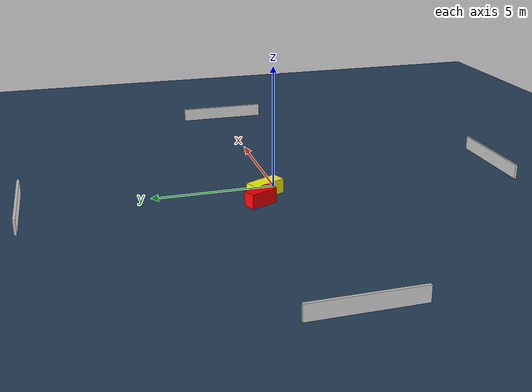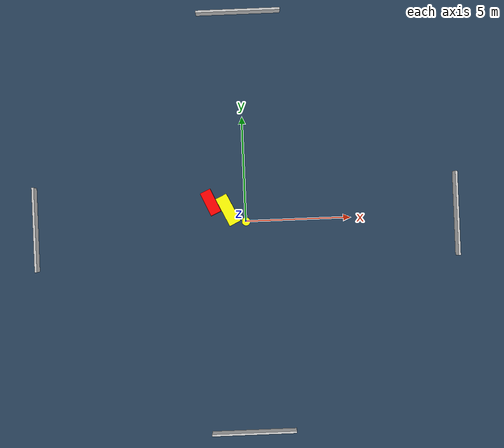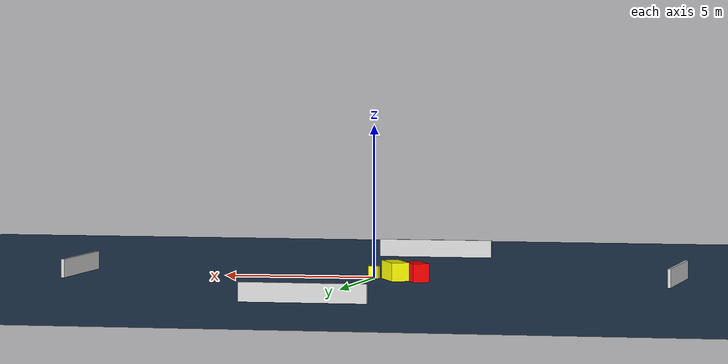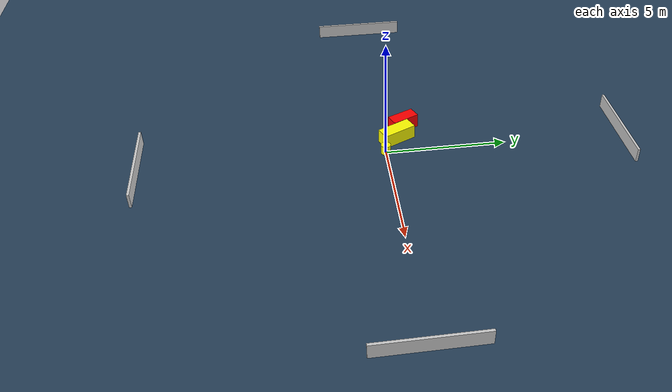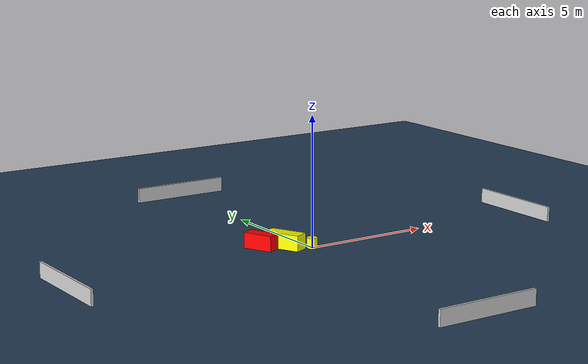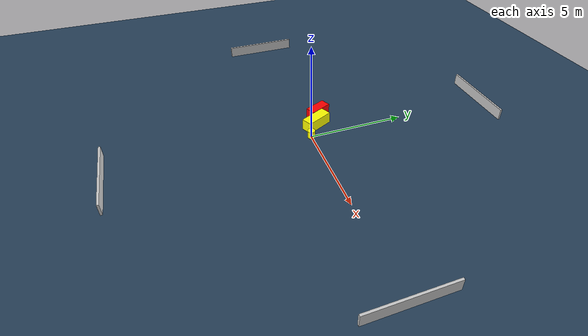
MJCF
<?xml version="1.0" ?>
<mujoco model="generated_environment">
  <option timestep="0.01" integrator="RK4" cone="elliptic"/>
  <default>
    <geom density="1"/>
  </default>
  <asset>
    <texture builtin="gradient" height="3072" name="skybox" rgb1="0.3 0.5 0.7" rgb2="0 0 0" type="skybox" width="512"/>
    <texture builtin="checker" height="300" name="groundplane" rgb1="0.2 0.3 0.4" rgb2="0.1 0.2 0.3" type="2d" width="300"/>
    <material name="groundplane" reflectance="0.2" texrepeat="5 5" texture="groundplane"/>
  </asset>
  <worldbody>
    <light dir="0 0 -1" directional="true" pos="0 0 1.5"/>
    <geom condim="3" friction="0.5 0.005 0.001" material="groundplane" name="floor" pos="0 0 0" size="0 0 0.05" type="plane"/>
    <body name="walls">
      <geom name="wall_1" condim="4" pos="-10.0 0.0 0.3" rgba="0.800000011920929 0.800000011920929 0.800000011920929 1.0" size="0.05 2.0 0.3" type="box"/>
      <geom name="wall_2" condim="4" pos="10.0 0.0 0.3" rgba="0.800000011920929 0.800000011920929 0.800000011920929 1.0" size="0.05 2.0 0.3" type="box"/>
      <geom name="wall_3" condim="4" pos="0.0 -10.0 0.3" rgba="0.800000011920929 0.800000011920929 0.800000011920929 1.0" size="2.0 0.05 0.3" type="box"/>
      <geom name="wall_4" condim="4" pos="0.0 10.0 0.3" rgba="0.800000011920929 0.800000011920929 0.800000011920929 1.0" size="2.0 0.05 0.3" type="box"/>
    </body>
    <body name="robot">
      <joint name="joint_x" type="slide" pos="0 0 0" axis="1 0 0"/>
      <joint name="joint_y" type="slide" pos="0 0 0" axis="0 1 0"/>
      <geom name="robot" type="cylinder" pos="0.0 0.0 0.2" size="0.2 0.2 0.0" mass="5.0" friction="1.0 0.005 0.0001" condim="4" rgba="1.0 1.0 0.0 1.0"/>
    </body>
    <body name="obstacle_1_movable">
      <geom name="obstacle_1_movable" condim="4" pos="-0.8284545820449603 0.5754730122457519 0.3" euler="0 0 295.75646433066385" friction="0.0 0.005 0.001" rgba="1.0 1.0 0.0 1.0" size="0.720137841028712 0.28627482081159417 0.3" type="box" mass="0.1"/>
      <joint type="free"/>
    </body>
    <body name="obstacle_2_static">
      <geom name="obstacle_2_static" condim="4" pos="-1.6391581895105178 0.9700435027954076 0.3" euler="0 0 24.39809440322792" friction="0.0 0.005 0.001" rgba="1.0 0.0 0.0 1.0" size="0.2601285092865805 0.5839915540208853 0.3" type="box"/>
    </body>
  </worldbody>
  <actuator>
    <motor name="actuator_x" joint="joint_x" gear="1" ctrlrange="-1 1"/>
    <motor name="actuator_y" joint="joint_y" gear="1" ctrlrange="-1 1"/>
  </actuator>
</mujoco>
